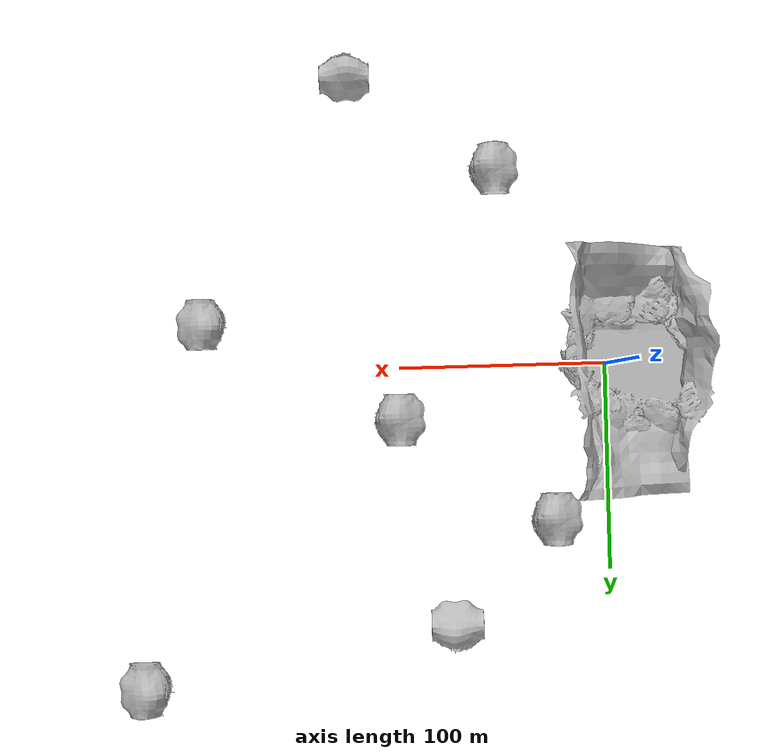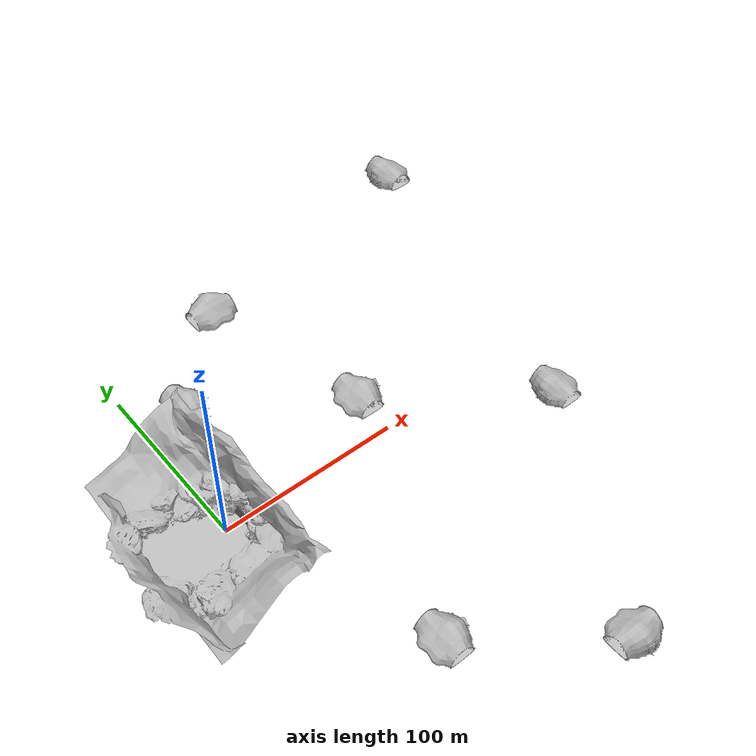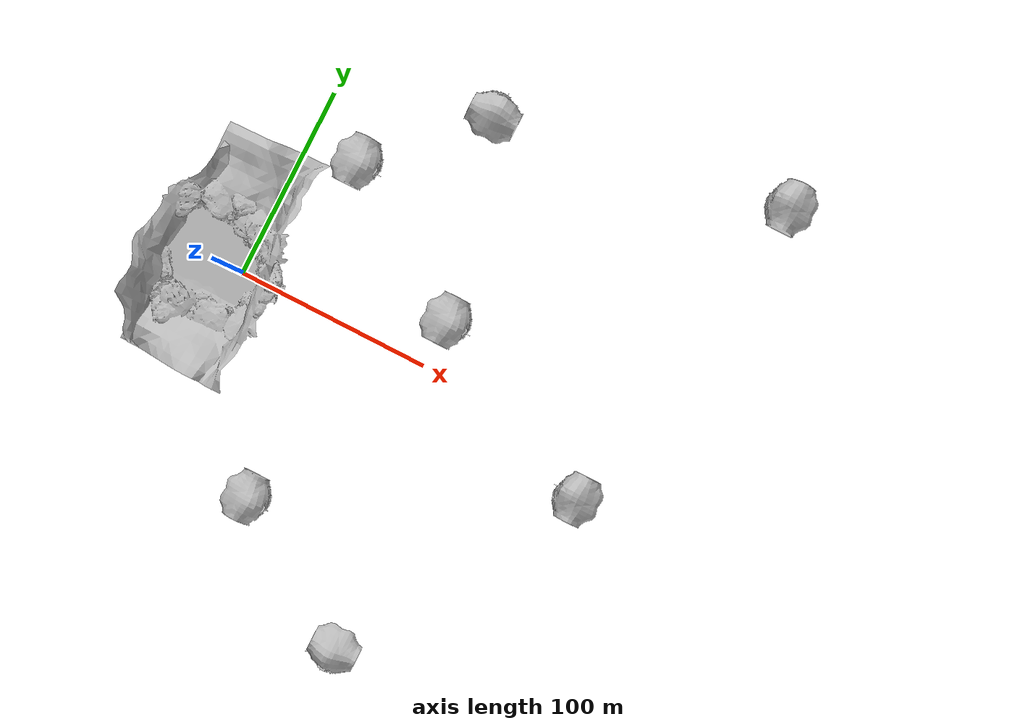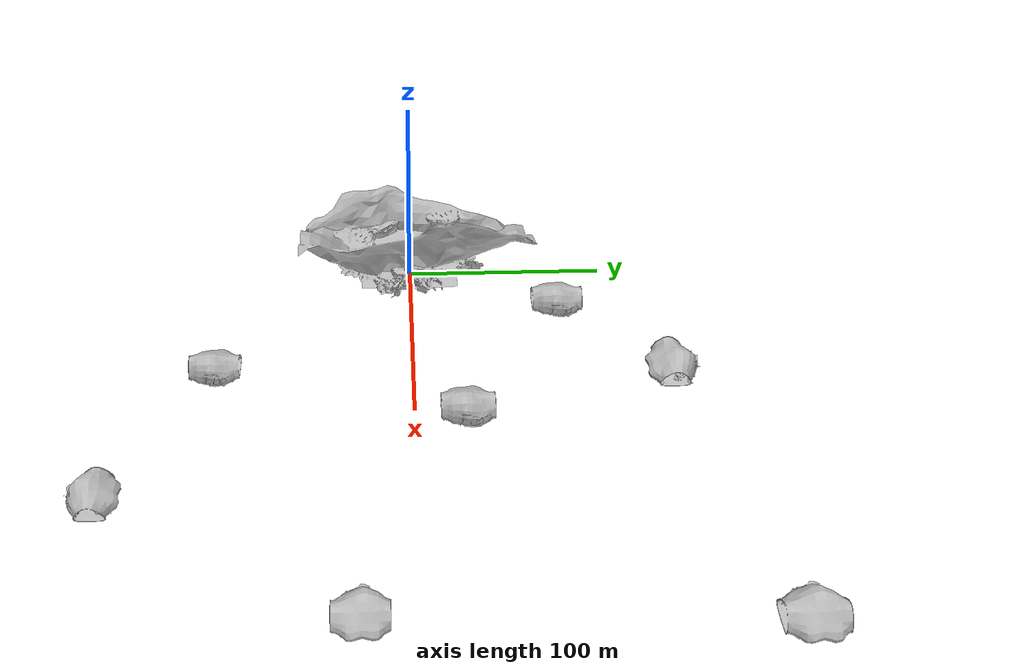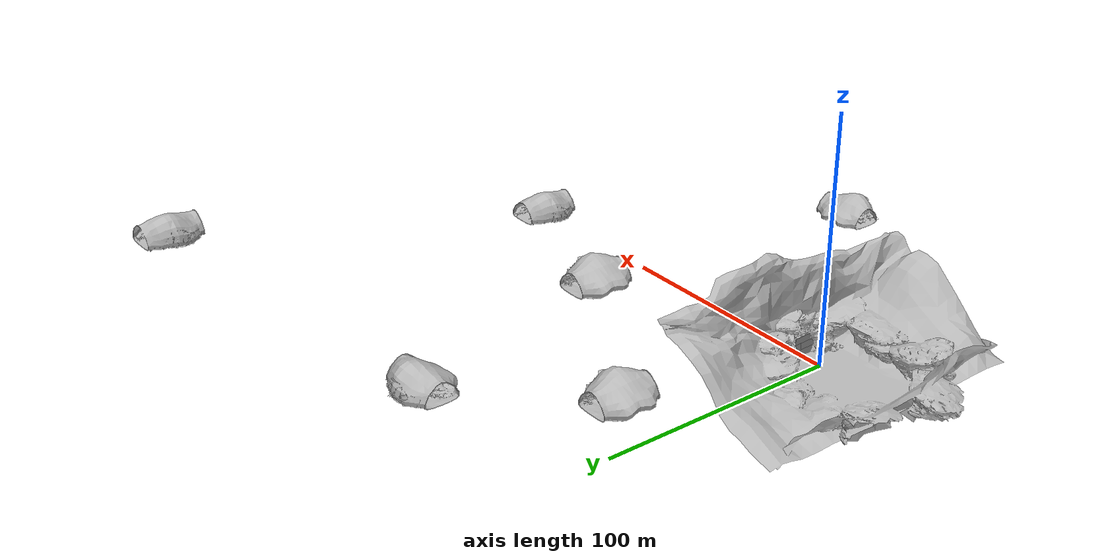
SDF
<sdf version="1.7">
 <world name="simple_cave_02">
  <plugin name="ros_interface_plugin" filename="librotors_gazebo_ros_interface_plugin.so"/>
  <physics name="1ms" type="ode">
   <max_step_size>0.001</max_step_size>
   <real_time_factor>1</real_time_factor>
   <real_time_update_rate>1000</real_time_update_rate>
  </physics>
  <scene>
   <ambient>150 150 150 255</ambient>
   <background>250 250 250 255</background>
   <grid>1</grid>
   <origin_visual>1</origin_visual>
   <shadows>1</shadows>
  </scene>
  <model name="staging_area">
   <pose>0 0 0 0 -0 1.5708</pose>
   <static>1</static>
   <link name="link">
    <collision name="collision">
     <geometry><mesh><uri>model://Cave Starting Area/meshes/cavestartingarea.dae</uri></mesh></geometry>
    </collision>
    <visual name="visual">
     <geometry><mesh><uri>model://Cave Starting Area/meshes/cavestartingarea.dae</uri></mesh></geometry>
    </visual>
   </link>
  </model>
  <model name="tile_1">
   <pose>225 150 10 0 -0 -3.14159</pose>
   <static>1</static>
   <link name="link">
    <collision name="collision">
     <geometry><mesh><uri>model://Cave Straight 01/meshes/cavestraight01.dae</uri></mesh></geometry>
    </collision>
    <visual name="visual">
     <geometry><mesh><uri>model://Cave Straight 01/meshes/cavestraight01.dae</uri></mesh></geometry>
    </visual>
   </link>
  </model>
  <model name="tile_4">
   <pose>75 125 0 0 -0 1.5708</pose>
   <static>1</static>
   <link name="link">
    <collision name="collision">
     <geometry><mesh><uri>model://Cave Straight 01/meshes/cavestraight01.dae</uri></mesh></geometry>
    </collision>
    <visual name="visual">
     <geometry><mesh><uri>model://Cave Straight 01/meshes/cavestraight01.dae</uri></mesh></geometry>
    </visual>
   </link>
  </model>
  <model name="tile_14">
   <pose>25 75 0 0 -0 0</pose>
   <static>1</static>
   <link name="link">
    <collision name="collision">
     <geometry><mesh><uri>model://Cave Straight 01/meshes/cavestraight01.dae</uri></mesh></geometry>
    </collision>
    <visual name="visual">
     <geometry><mesh><uri>model://Cave Straight 01/meshes/cavestraight01.dae</uri></mesh></geometry>
    </visual>
   </link>
  </model>
  <model name="tile_24">
   <pose>100 25 0 0 -0 0</pose>
   <static>1</static>
   <link name="link">
    <collision name="collision">
     <geometry><mesh><uri>model://Cave Straight 01/meshes/cavestraight01.dae</uri></mesh></geometry>
    </collision>
    <visual name="visual">
     <geometry><mesh><uri>model://Cave Straight 01/meshes/cavestraight01.dae</uri></mesh></geometry>
    </visual>
   </link>
  </model>
  <model name="tile_34">
   <pose>200 -25 -20 0 -0 -3.14159</pose>
   <static>1</static>
   <link name="link">
    <collision name="collision">
     <geometry><mesh><uri>model://Cave Straight 01/meshes/cavestraight01.dae</uri></mesh></geometry>
    </collision>
    <visual name="visual">
     <geometry><mesh><uri>model://Cave Straight 01/meshes/cavestraight01.dae</uri></mesh></geometry>
    </visual>
   </link>
  </model>
  <model name="tile_44">
   <pose>50 -100 -20 0 -0 0</pose>
   <static>1</static>
   <link name="link">
    <collision name="collision">
     <geometry><mesh><uri>model://Cave Straight 01/meshes/cavestraight01.dae</uri></mesh></geometry>
    </collision>
    <visual name="visual">
     <geometry><mesh><uri>model://Cave Straight 01/meshes/cavestraight01.dae</uri></mesh></geometry>
    </visual>
   </link>
  </model>
  <model name="tile_53">
   <pose>125 -150 -30 0 0 -1.5708</pose>
   <static>1</static>
   <link name="link">
    <collision name="collision">
     <geometry><mesh><uri>model://Cave Straight 01/meshes/cavestraight01.dae</uri></mesh></geometry>
    </collision>
    <visual name="visual">
     <geometry><mesh><uri>model://Cave Straight 01/meshes/cavestraight01.dae</uri></mesh></geometry>
    </visual>
   </link>
  </model>
  <gravity>0 0 -9.8</gravity>
  <magnetic_field>6e-06 2.3e-05 -4.2e-05</magnetic_field>
  <atmosphere type="adiabatic"/>
  <spherical_coordinates>
   <surface_model>EARTH_WGS84</surface_model>
   <latitude_deg>0</latitude_deg>
   <longitude_deg>0</longitude_deg>
   <elevation>0</elevation>
   <heading_deg>0</heading_deg>
  </spherical_coordinates>
  <model name="grey_wall">
   <static>1</static>
   <link name="link">
    <pose>0 0 1.4 0 -0 0</pose>
    <collision name="collision"><geometry><box><size>7.5 0.2 2.8</size></box></geometry></collision>
    <visual name="visual">
     <cast_shadows>0</cast_shadows>
     <geometry><box><size>7.5 0.2 2.8</size></box></geometry>
     <material>
      <script>
       <uri>model://grey_wall/materials/scripts</uri>
       <uri>model://grey_wall/materials/textures</uri>
       <name>vrc/grey_wall</name>
      </script>
     </material>
    </visual>
   </link>
   <pose>9.73665 -2.10535 0 0 -0 1.60171</pose>
  </model>
  <model name="grey_wall_0">
   <static>1</static>
   <link name="link">
    <pose>0 0 1.4 0 -0 0</pose>
    <collision name="collision"><geometry><box><size>7.5 0.2 2.8</size></box></geometry></collision>
    <visual name="visual">
     <cast_shadows>0</cast_shadows>
     <geometry><box><size>7.5 0.2 2.8</size></box></geometry>
     <material>
      <script>
       <uri>model://grey_wall/materials/scripts</uri>
       <uri>model://grey_wall/materials/textures</uri>
       <name>vrc/grey_wall</name>
      </script>
     </material>
    </visual>
   </link>
   <pose>9.63641 1.93716 0 0 -0 1.6038</pose>
  </model>
  <model name="grey_wall_0_clone">
   <static>1</static>
   <link name="link">
    <pose>0 0 1.4 0 -0 0</pose>
    <collision name="collision"><geometry><box><size>7.5 0.2 2.8</size></box></geometry></collision>
    <visual name="visual">
     <cast_shadows>0</cast_shadows>
     <geometry><box><size>7.5 0.2 2.8</size></box></geometry>
     <material>
      <script>
       <uri>model://grey_wall/materials/scripts</uri>
       <uri>model://grey_wall/materials/textures</uri>
       <name>vrc/grey_wall</name>
      </script>
     </material>
    </visual>
   </link>
   <pose>9.80998 -3.29537 2.79999 0 -0 1.6038</pose>
  </model>
  <model name="grey_wall_0_clone_clone">
   <static>1</static>
   <link name="link">
    <pose>0 0 1.4 0 -0 0</pose>
    <collision name="collision"><geometry><box><size>7.5 0.2 2.8</size></box></geometry></collision>
    <visual name="visual">
     <cast_shadows>0</cast_shadows>
     <geometry><box><size>7.5 0.2 2.8</size></box></geometry>
     <material>
      <script>
       <uri>model://grey_wall/materials/scripts</uri>
       <uri>model://grey_wall/materials/textures</uri>
       <name>vrc/grey_wall</name>
      </script>
     </material>
    </visual>
   </link>
   <pose>9.59789 3.20547 2.79175 0 -0 1.6038</pose>
  </model>
  <model name="grey_wall_0_clone_clone_0">
   <static>1</static>
   <link name="link">
    <pose>0 0 1.4 0 -0 0</pose>
    <collision name="collision"><geometry><box><size>7.5 0.2 2.8</size></box></geometry></collision>
    <visual name="visual">
     <cast_shadows>0</cast_shadows>
     <geometry><box><size>7.5 0.2 2.8</size></box></geometry>
     <material>
      <script>
       <uri>model://grey_wall/materials/scripts</uri>
       <uri>model://grey_wall/materials/textures</uri>
       <name>vrc/grey_wall</name>
      </script>
     </material>
    </visual>
   </link>
   <pose>9.83364 -3.99477 2.79175 0 -0 1.6038</pose>
  </model>
  <model name="grey_wall_0_clone_clone_1">
   <static>1</static>
   <link name="link">
    <pose>0 0 1.4 0 -0 0</pose>
    <collision name="collision"><geometry><box><size>7.5 0.2 2.8</size></box></geometry></collision>
    <visual name="visual">
     <cast_shadows>0</cast_shadows>
     <geometry><box><size>7.5 0.2 2.8</size></box></geometry>
     <material>
      <script>
       <uri>model://grey_wall/materials/scripts</uri>
       <uri>model://grey_wall/materials/textures</uri>
       <name>vrc/grey_wall</name>
      </script>
     </material>
    </visual>
   </link>
   <pose>9.81279 -0.429305 5.31108 0 -0 1.6038</pose>
  </model>
 </world>
</sdf>
